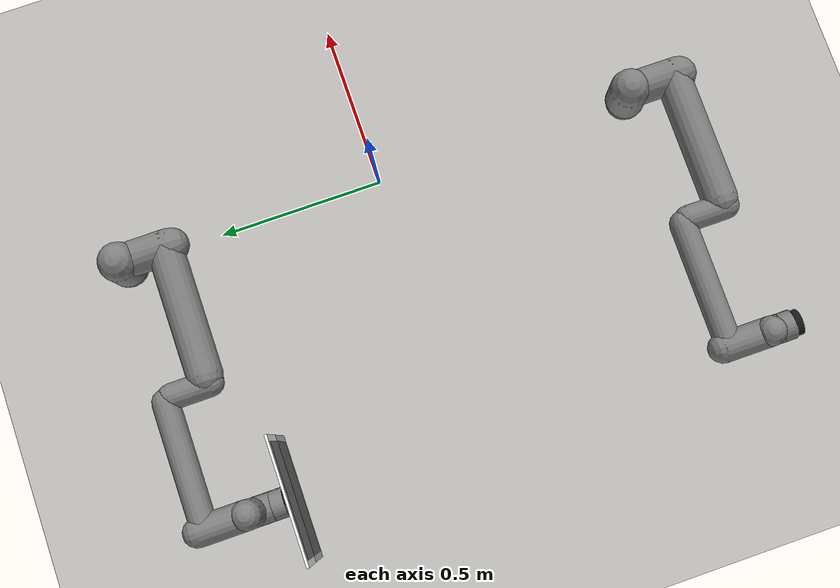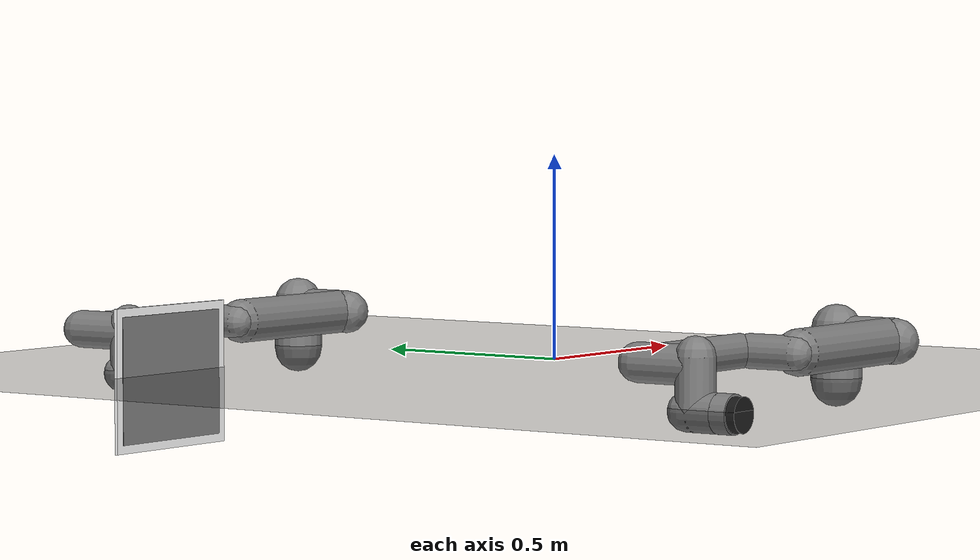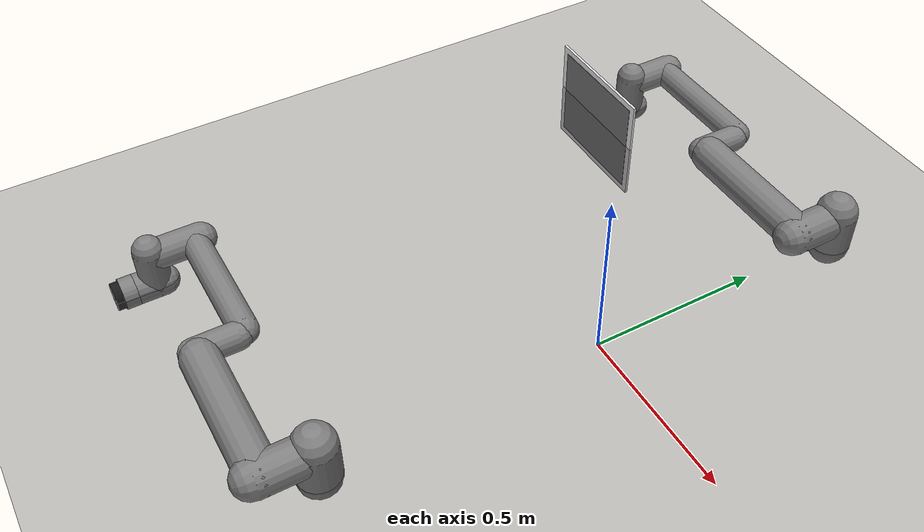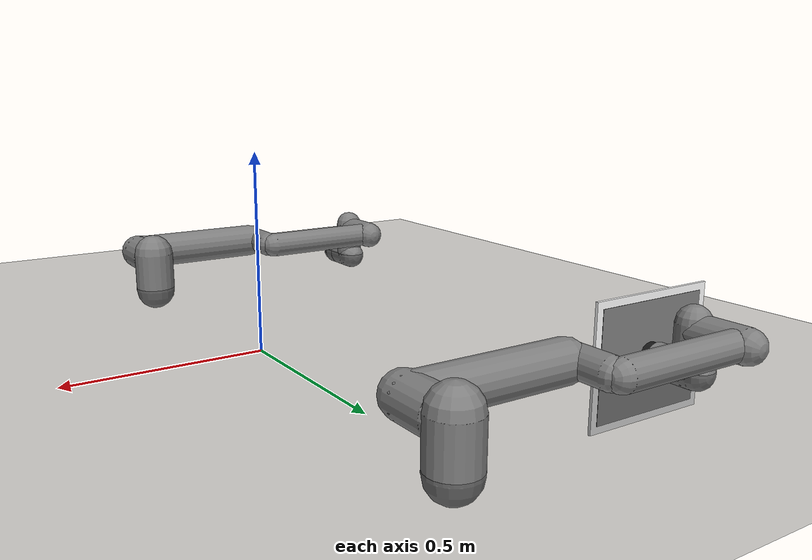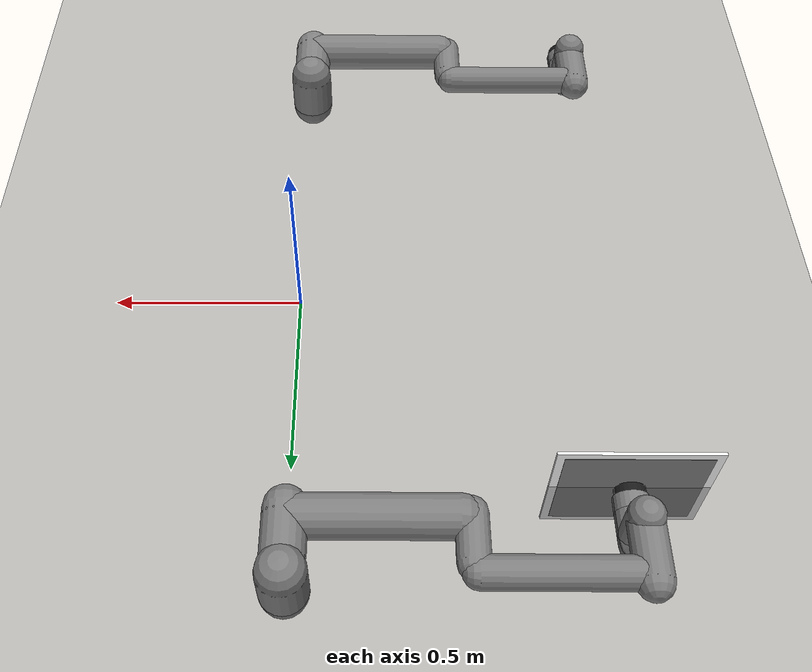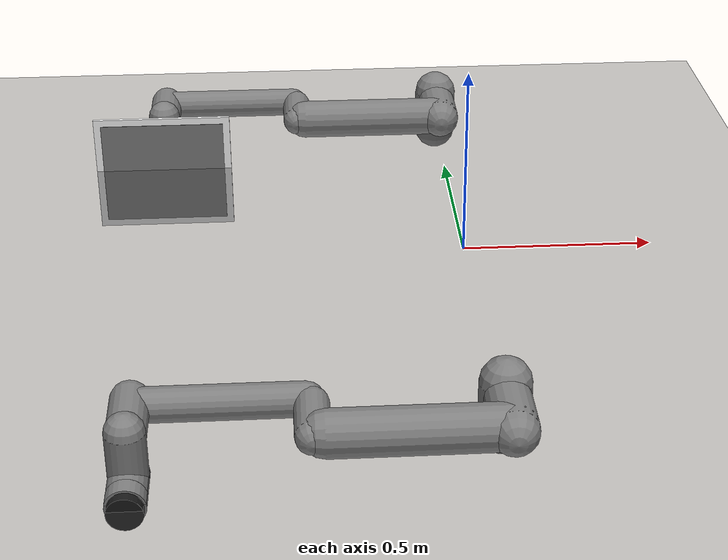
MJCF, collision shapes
<!-- 定义MuJoCo模型，模型名称为"dual_ur5_scene"，核心是创建两台面对面的UR5机械臂（左侧带相机、右侧携带棋盘格） -->
<mujoco model="dual_ur5_scene">
  <!-- 编译器配置：设置模型解析和加载的相关参数 -->
  <compiler angle="radian" meshdir="ur5" autolimits="true"/>
  <option integrator="implicitfast"/>

  <!-- ================= 1. 资源引用 (公用) ================= -->
  <asset>
    <!-- 材质 -->
    <material class="ur5" name="black" rgba="0.033 0.033 0.033 1"/>
    <material class="ur5" name="jointgray" rgba="0.278 0.278 0.278 1"/>
    <material class="ur5" name="linkgray" rgba="0.82 0.82 0.82 1"/>
    <material class="ur5" name="urblue" rgba="0.49 0.678 0.8 1"/>

    <!-- 棋盘格材质 -->
    <texture name="checker_tex" type="2d" builtin="checker" rgb1="0 0 0" rgb2="1 1 1" width="512" height="512" mark="none"/>
    <material name="checker_mat" texture="checker_tex" texrepeat="3.5 3" reflectance="0"/>
    <material name="white_mat" rgba="1 1 1 1" reflectance="0"/>

    <!-- Mesh 文件 (两个机器人共用一套 Mesh) -->
    <mesh file="base_0.obj"/>   <mesh file="base_1.obj"/>
    <mesh file="shoulder_0.obj"/> <mesh file="shoulder_1.obj"/> <mesh file="shoulder_2.obj"/>
    <mesh file="upperarm_0.obj"/> <mesh file="upperarm_1.obj"/> <mesh file="upperarm_2.obj"/> <mesh file="upperarm_3.obj"/>
    <mesh file="forearm_0.obj"/>  <mesh file="forearm_1.obj"/>  <mesh file="forearm_2.obj"/>  <mesh file="forearm_3.obj"/>
    <mesh file="wrist1_0.obj"/>   <mesh file="wrist1_1.obj"/>   <mesh file="wrist1_2.obj"/>
    <mesh file="wrist2_0.obj"/>   <mesh file="wrist2_1.obj"/>   <mesh file="wrist2_2.obj"/>
    <mesh file="wrist3.obj"/>
  </asset>

  <!-- ================= 2. 默认参数 (公用) ================= -->
  <default>
    <default class="ur5">
      <material specular="0.5" shininess="0.25"/>
      <joint axis="0 1 0" range="-6.28319 6.28319" armature="0.1" damping="5"/>
      <general gaintype="fixed" biastype="affine" ctrlrange="-6.2831 6.2831" gainprm="2000" biasprm="0 -2000 -400" forcerange="-150 150"/>

      <default class="size3">
        <default class="size3_limited">
          <joint range="-3.1415 3.1415"/>
          <general ctrlrange="-3.1415 3.1415"/>
        </default>
      </default>

      <default class="size1">
        <general gainprm="500" biasprm="0 -500 -100" forcerange="-28 28"/>
      </default>

      <default class="visual">
        <geom type="mesh" contype="0" conaffinity="0" group="2"/>
      </default>

      <default class="collision">
        <geom type="capsule" group="3"/>
        <default class="eef_collision">
          <geom type="cylinder"/>
        </default>
      </default>

      <site size="0.001" rgba="0.5 0.5 0.5 0.3" group="4"/>
    </default>
  </default>

  <!-- ================= 3. 世界构建 ================= -->
  <worldbody>
    <light pos="0 0 3" dir="0 0 -1" directional="true" diffuse="0.5 0.5 0.5"/>
    <geom name="floor" type="plane" size="3 3 0.1" rgba="0.2 0.2 0.2 1"/>

    <!-- ==================== Robot 1 (左侧/观察者) ==================== -->
     <!-- 机械臂1位置：y = -0.5（世界坐标系左侧），四元数姿态quat="0 0 0 -1"（绕z轴旋转180°，准备与右侧机械臂面对面） -->
    <body name="base" pos="0 -0.8 0" quat="0 0 0 -1" childclass="ur5">
      <inertial mass="4.0" pos="0 0 0" diaginertia="0.0044 0.0044 0.0072"/>
      <geom mesh="base_0" material="black" class="visual"/>
      <geom mesh="base_1" material="jointgray" class="visual"/>

      <body name="shoulder_link" pos="0 0 0.089159">
        <inertial mass="3.7" pos="0 -0.0019 -0.025" diaginertia="0.015 0.015 0.010"/>
        <joint name="shoulder_pan_joint" class="size3" axis="0 0 1"/>
        <geom mesh="shoulder_0" material="urblue" class="visual"/>
        <geom mesh="shoulder_1" material="black" class="visual"/>
        <geom mesh="shoulder_2" material="jointgray" class="visual"/>
        <geom class="collision" size="0.06 0.06" pos="0 0 -0.04"/>

        <body name="upper_arm_link" pos="0 0.138 0" quat="1 0 1 0">
          <inertial mass="8.39" pos="-0.21 0 0.11" diaginertia="0.13 0.13 0.015"/>
          <joint name="shoulder_lift_joint" class="size3"/>
          <geom mesh="upperarm_0" material="linkgray" class="visual"/>
          <geom mesh="upperarm_1" material="black" class="visual"/>
          <geom mesh="upperarm_2" material="jointgray" class="visual"/>
          <geom mesh="upperarm_3" material="urblue" class="visual"/>
          <geom class="collision" pos="0 -0.04 0" quat="1 1 0 0" size="0.054 0.06"/>
          <geom class="collision" size="0.054 0.2" pos="0 0 0.2"/>

          <body name="forearm_link" pos="0 -0.131 0.425">
            <inertial mass="2.27" pos="-0.24 0 0.026" diaginertia="0.03 0.03 0.004"/>
            <joint name="elbow_joint" class="size3_limited"/>
            <geom mesh="forearm_0" material="urblue" class="visual"/>
            <geom mesh="forearm_1" material="linkgray" class="visual"/>
            <geom mesh="forearm_2" material="black" class="visual"/>
            <geom mesh="forearm_3" material="jointgray" class="visual"/>
            <geom class="collision" pos="0 0.08 0" quat="1 1 0 0" size="0.040 0.06"/>
            <geom class="collision" size="0.040 0.19" pos="0 0 0.2"/>

            <body name="wrist_1_link" pos="0 0 0.392" quat="1 0 1 0">
              <inertial mass="1.2" pos="0 -0.016 -0.0018" diaginertia="0.002 0.002 0.002"/>
              <joint name="wrist_1_joint" class="size1"/>
              <geom mesh="wrist1_0" material="black" class="visual"/>
              <geom mesh="wrist1_1" material="urblue" class="visual"/>
              <geom mesh="wrist1_2" material="jointgray" class="visual"/>
              <geom class="collision" pos="0 0.05 0" quat="1 1 0 0" size="0.045 0.07"/>

              <body name="wrist_2_link" pos="0 0.127 0">
                <inertial mass="1.2" pos="0 0.016 -0.0018" diaginertia="0.0018 0.0018 0.002"/>
                <joint name="wrist_2_joint" axis="0 0 1" class="size1"/>
                <geom mesh="wrist2_0" material="black" class="visual"/>
                <geom mesh="wrist2_1" material="urblue" class="visual"/>
                <geom mesh="wrist2_2" material="jointgray" class="visual"/>
                <geom class="collision" size="0.045 0.06" pos="0 0 0.04"/>
                <geom class="collision" pos="0 0.02 0.1" quat="1 1 0 0" size="0.045 0.04"/>

                <body name="wrist_3_link" pos="0 0 0.1">
                  <inertial mass="0.18" pos="0 0 -0.001" diaginertia="8e-5 8e-5 0.0001"/>
                  <joint name="wrist_3_joint" class="size1"/>
                  <geom material="linkgray" mesh="wrist3" class="visual"/>
                  <geom class="eef_collision" pos="0 0.08 0" quat="1 1 0 0" size="0.045 0.02"/>

                  <!-- Robot 1 带着相机 -->
                  <camera name="wrist_camera" pos="0 0.1 0" quat="0.707 0.707 0 0" fovy="50"/>

                  <!-- 夹爪 (简化版) -->
                  <body name="gripper_base" pos="0 0.0823 0" quat="-0.707 0.707 0 0">
                    <geom type="cylinder" size="0.04 0.04" rgba="0.1 0.1 0.1 1"/>
                    <site name="tcp" pos="0 0 0" size="0.005" rgba="0 1 0 0.5" group="0"/>
                  </body>
                </body>
              </body>
            </body>
          </body>
        </body>
      </body>
    </body>

    <!-- ==================== Robot 2 (右侧/持有者) ==================== -->
    <!-- 机械臂2位置：y = 0.5（世界坐标系右侧），四元数姿态quat="0 0 0 1"（默认姿态，与左侧机械臂面对面） -->
    <body name="base_2" pos="0 0.8 0" quat="0 0 0 1" childclass="ur5">
      <!-- 旋转 quat="0 0 0 1" 让它转180度面对 Robot 1 -->
      <inertial mass="4.0" pos="0 0 0" diaginertia="0.0044 0.0044 0.0072"/>
      <geom mesh="base_0" material="black" class="visual"/>
      <geom mesh="base_1" material="jointgray" class="visual"/>

      <body name="shoulder_link_2" pos="0 0 0.089159">
        <inertial mass="3.7" pos="0 -0.0019 -0.025" diaginertia="0.015 0.015 0.010"/>
        <!-- ⚠️ Joint Renamed -->
        <joint name="shoulder_pan_joint_2" class="size3" axis="0 0 1"/>
        <geom mesh="shoulder_0" material="urblue" class="visual"/>
        <geom mesh="shoulder_1" material="black" class="visual"/>
        <geom mesh="shoulder_2" material="jointgray" class="visual"/>
        <geom class="collision" size="0.06 0.06" pos="0 0 -0.04"/>

        <body name="upper_arm_link_2" pos="0 0.138 0" quat="1 0 1 0">
          <inertial mass="8.39" pos="-0.21 0 0.11" diaginertia="0.13 0.13 0.015"/>
          <joint name="shoulder_lift_joint_2" class="size3"/>
          <geom mesh="upperarm_0" material="linkgray" class="visual"/>
          <geom mesh="upperarm_1" material="black" class="visual"/>
          <geom mesh="upperarm_2" material="jointgray" class="visual"/>
          <geom mesh="upperarm_3" material="urblue" class="visual"/>
          <geom class="collision" pos="0 -0.04 0" quat="1 1 0 0" size="0.054 0.06"/>
          <geom class="collision" size="0.054 0.2" pos="0 0 0.2"/>

          <body name="forearm_link_2" pos="0 -0.131 0.425">
            <inertial mass="2.27" pos="-0.24 0 0.026" diaginertia="0.03 0.03 0.004"/>
            <joint name="elbow_joint_2" class="size3_limited"/>
            <geom mesh="forearm_0" material="urblue" class="visual"/>
            <geom mesh="forearm_1" material="linkgray" class="visual"/>
            <geom mesh="forearm_2" material="black" class="visual"/>
            <geom mesh="forearm_3" material="jointgray" class="visual"/>
            <geom class="collision" pos="0 0.08 0" quat="1 1 0 0" size="0.040 0.06"/>
            <geom class="collision" size="0.040 0.19" pos="0 0 0.2"/>

            <body name="wrist_1_link_2" pos="0 0 0.392" quat="1 0 1 0">
              <inertial mass="1.2" pos="0 -0.016 -0.0018" diaginertia="0.002 0.002 0.002"/>
              <joint name="wrist_1_joint_2" class="size1"/>
              <geom mesh="wrist1_0" material="black" class="visual"/>
              <geom mesh="wrist1_1" material="urblue" class="visual"/>
              <geom mesh="wrist1_2" material="jointgray" class="visual"/>
              <geom class="collision" pos="0 0.05 0" quat="1 1 0 0" size="0.045 0.07"/>

              <body name="wrist_2_link_2" pos="0 0.127 0">
                <inertial mass="1.2" pos="0 0.016 -0.0018" diaginertia="0.0018 0.0018 0.002"/>
                <joint name="wrist_2_joint_2" axis="0 0 1" class="size1"/>
                <geom mesh="wrist2_0" material="black" class="visual"/>
                <geom mesh="wrist2_1" material="urblue" class="visual"/>
                <geom mesh="wrist2_2" material="jointgray" class="visual"/>
                <geom class="collision" size="0.045 0.06" pos="0 0 0.04"/>
                <geom class="collision" pos="0 0.02 0.1" quat="1 1 0 0" size="0.045 0.04"/>

                <body name="wrist_3_link_2" pos="0 0 0.1">
                  <inertial mass="0.18" pos="0 0 -0.001" diaginertia="8e-5 8e-5 0.0001"/>
                  <joint name="wrist_3_joint_2" class="size1"/>
                  <geom material="linkgray" mesh="wrist3" class="visual"/>
                  <geom class="eef_collision" pos="0 0.08 0" quat="1 1 0 0" size="0.045 0.02"/>

                  <!-- Robot 2 的夹爪基座 -->
                  <body name="gripper_base_2" pos="0 0.0823 0" quat="-0.707 0.707 0 0">
                    <geom type="cylinder" size="0.04 0.04" rgba="0.1 0.1 0.1 1"/>
                    <site name="tcp_2" pos="0 0 0.05" size="0.005" rgba="1 0 0 0.5" group="0"/>

                    <!--  Robot 2的棋盘格 -->
                    <body name="checkerboard_attached" pos="0 0 0.045" euler="0 0 0">
                        <!-- 引用之前的 checkerboard 几何体 -->
                        <geom type="box" size="0.195 0.17 0.004" material="white_mat" euler="0 0 0"/>
                        <geom type="box" size="0.175 0.15 0.005" material="checker_mat" euler="0 0 0"/>
                    </body>
                  </body>
                </body>
              </body>
            </body>
          </body>
        </body>
      </body>
    </body>
  </worldbody>

  <!-- ================= 4. 执行器  ================= -->
  <actuator>
    <!-- Robot 1 Controllers -->
    <general class="size3" name="shoulder_pan" joint="shoulder_pan_joint"/>
    <general class="size3" name="shoulder_lift" joint="shoulder_lift_joint"/>
    <general class="size3_limited" name="elbow" joint="elbow_joint"/>
    <general class="size1" name="wrist_1" joint="wrist_1_joint"/>
    <general class="size1" name="wrist_2" joint="wrist_2_joint"/>
    <general class="size1" name="wrist_3" joint="wrist_3_joint"/>

    <!-- Robot 2 Controllers (注意名字后缀 _2) -->
    <general class="size3" name="shoulder_pan_2" joint="shoulder_pan_joint_2"/>
    <general class="size3" name="shoulder_lift_2" joint="shoulder_lift_joint_2"/>
    <general class="size3_limited" name="elbow_2" joint="elbow_joint_2"/>
    <general class="size1" name="wrist_1_2" joint="wrist_1_joint_2"/>
    <general class="size1" name="wrist_2_2" joint="wrist_2_joint_2"/>
    <general class="size1" name="wrist_3_2" joint="wrist_3_joint_2"/>
  </actuator>

  <!-- 初始姿态 -->
  <keyframe>
    <!-- 两个机器人都抬起来一点，面对面 -->
    <!-- 12个关节数据: [Robot 1 (6个)] + [Robot 2 (6个)] -->
    <!-- Robot 1: -1.57 -1.57 1.57 ... -->
    <!-- Robot 2: -1.57 -1.57 1.57 ... (同样的姿态，因为它是倒着放的，所以视觉上会镜像) -->
    <key name="meet_pose"
         qpos="-1.57 -1.57 1.57 -1.57 -1.57 0   -1.57 -1.57 1.57 -1.57 -1.57 0"
         ctrl="-1.57 -1.57 1.57 -1.57 -1.57 0   -1.57 -1.57 1.57 -1.57 -1.57 0"/>
  </keyframe>
</mujoco>
